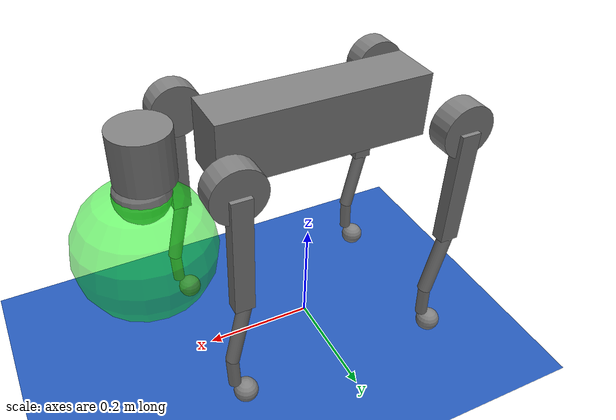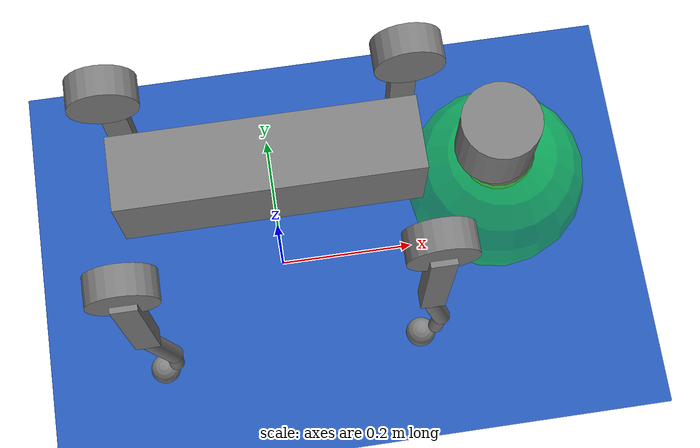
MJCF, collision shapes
<mujoco model="Quadruped">
  <include file="../common.xml"/>

  <size memory="1M"/>

  <custom>
    <!-- agent -->
    <text name="task_transition" data="Quadruped|Biped|Walk|Scramble|Flip" />
    <numeric name="agent_planner" data="2 " />
    <numeric name="agent_horizon" data="0.35" />
    <numeric name="agent_timestep" data="0.01" />
    <numeric name="sampling_spline_points" data="3" />
    <numeric name="sampling_trajectories" data="60"/>
    <numeric name="sampling_exploration" data="0.04" />
    <numeric name="gradient_spline_points" data="5" />

    <!-- residual -->
    <numeric name="residual_select_Gait" data="0"/>
    <text name="residual_list_Gait" data="Stand|Walk|Trot|Canter|Gallop"/>
    <numeric name="residual_select_Gait switch" data="1"/>
    <text name="residual_list_Gait switch" data="Manual|Automatic"/>
    <numeric name="residual_Cadence" data="2 0 4" />
    <numeric name="residual_Amplitude" data=".06 0 0.2" />
    <numeric name="residual_Duty ratio" data="0 0 1"/>
    <numeric name="residual_Walk speed" data="0 0 4"/>
    <numeric name="residual_Walk turn" data="0 -2 2"/>
    <numeric name="residual_select_Flip dir" data="0"/>
    <text name="residual_list_Flip dir" data="Back Flip|Front Flip"/>
    <numeric name="residual_select_Biped type" data="0"/>
    <text name="residual_list_Biped type" data="Foot Stand|Hand Stand"/>
    <numeric name="residual_Heading" data="0 -3.14 3.14" />
    <numeric name="residual_Arm posture" data=".03 0 1"/>

    <!-- estimator -->
    <numeric name="estimator" data="0" />
    <numeric name="estimator_sensor_start" data="9" />
    <numeric name="estimator_number_sensor" data="21" />
    <numeric name="estimator_timestep" data="0.005" />
    <numeric name="batch_configuration_length" data="3" />
    <numeric name="batch_scale_prior" data="1.0e-3" />
  </custom>

  <visual>
    <headlight diffuse="0.6 0.6 0.6"  ambient="0.3 0.3 0.3" specular="0 0 0"/>
    <global azimuth="-90"/>
  </visual>

  <statistic extent="1" center="0 0 .3"/>

  <worldbody>
    <light pos="0 0 1.5" dir="0 0 -1" diffuse="0.5 0.5 0.5" specular="0.3 0.3 0.3"
      directional="true" castshadow="false"/>
    <geom name="floor" size="0 0 0.1" pos="0 0 -0.01" type="plane" material="blue_grid"/>
     <body name="goal" mocap="true" pos=".3 0 0.28">
        <geom size="0.12" contype="0" conaffinity="0" rgba="0 1 0 .5" group="2"/>
      </body>

  </worldbody>

  <default>
    <default class="torque">
      <general gainprm="40" ctrllimited="true" ctrlrange="-1 1"/>
    </default>
    <default class="task">
      <site rgba="1 0 0 1" size=".02" group="5"/>
      <default class="flight">
        <site rgba="1 .3 .3 1" size="0.019" group="5"/>
      </default>
      <default class="stance">
        <site rgba=".3 1 .3 1" size=".018" group="4"/>
      </default>
    </default>
    <default class="prop">
      <geom type="box" rgba="0 0.4 1 1"/>
    </default>
  </default>

  <!-- modified from: https://github.com/google-deepmind/mujoco_menagerie/tree/main/unitree_a1 -->
  <include file="go2.xml" />

  <actuator>
    <position class="abduction" name="FR_hip" joint="FR_hip_joint"/>
    <position class="front_hip" name="FR_thigh" joint="FR_thigh_joint"/>
    <position class="knee" name="FR_calf" joint="FR_calf_joint"/>
    <position class="abduction" name="FL_hip" joint="FL_hip_joint"/>
    <position class="front_hip" name="FL_thigh" joint="FL_thigh_joint"/>
    <position class="knee" name="FL_calf" joint="FL_calf_joint"/>
    <position class="abduction" name="RR_hip" joint="RR_hip_joint"/>
    <position class="back_hip" name="RR_thigh" joint="RR_thigh_joint"/>
    <position class="knee" name="RR_calf" joint="RR_calf_joint"/>
    <position class="abduction" name="RL_hip" joint="RL_hip_joint"/>
    <position class="back_hip" name="RL_thigh" joint="RL_thigh_joint"/>
    <position class="knee" name="RL_calf" joint="RL_calf_joint"/>
  </actuator>

  <sensor>
    <!-- cost -->
    <user name="Upright" dim="3" user="6 0.1 0 3 0.05" />
    <user name="Height" dim="1" user="6 1 0 3 0.04" />
    <user name="Position" dim="3" user="2 0.2 0 0.5 0.1" />
    <user name="Gait" dim="4" user="6 2 0 10 0.03" />
    <user name="Balance" dim="2" user="2 0.2 0 0.3 0.1" />
    <user name="Effort" dim="12" user="0 0.08 0.0 0.1" />
    <user name="Posture" dim="12" user="0 0.02 0.0 0.1" />
    <user name="Orientation" dim="2" user="0 0 0 .03" />
    <user name="Angmom" dim="3" user="0 0 0 .03" />

    <!-- estimator measurements -->

    <jointpos name="pos_FR_hip_joint" joint="FR_hip_joint" />
    <jointpos name="pos_FR_thigh_joint" joint="FR_thigh_joint" />
    <jointpos name="pos_FR_calf_joint" joint="FR_calf_joint" />
    <jointpos name="pos_FL_hip_joint" joint="FL_hip_joint" />
    <jointpos name="pos_FL_thigh_joint" joint="FL_thigh_joint" />
    <jointpos name="pos_FL_calf_joint" joint="FL_calf_joint" />
    <jointpos name="pos_RR_hip_joint" joint="RR_hip_joint" />
    <jointpos name="pos_RR_thigh_joint" joint="RR_thigh_joint" />
    <jointpos name="pos_RR_calf_joint" joint="RR_calf_joint" />
    <jointpos name="pos_RL_hip_joint" joint="RL_hip_joint" />
    <jointpos name="pos_RL_thigh_joint" joint="RL_thigh_joint" />
    <jointpos name="pos_RL_calf_joint" joint="RL_calf_joint" />

    <!-- trace -->
    <framepos      name="trace0" objtype="site" objname="head"/>

    <!-- residual -->
    <subtreecom    name="torso_subtreecom" body="trunk"/>
    <subtreelinvel name="torso_subtreelinvel" body="trunk"/>
    <subtreelinvel name="torso_angmom" body="trunk"/>
  </sensor>

  <keyframe>
    <key name="home" qpos="0 0 0.27 1 0 0 0 0 0.9 -1.8 0 0.9 -1.8 0 0.9 -1.8 0 0.9 -1.8"
      ctrl="0 0.9 -1.8 0 0.9 -1.8 0 0.9 -1.8 0 0.9 -1.8"/>
  </keyframe>
</mujoco>

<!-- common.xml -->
<mujoco>

    <visual>
        <headlight ambient=".4 .4 .4" diffuse=".8 .8 .8" specular="0.1 0.1 0.1"/>
        <map znear=".01"/>
        <quality shadowsize="2048"/>
        <global elevation="-15"/>
    </visual>

    <asset>
        <texture name="blue_grid" type="2d" builtin="checker" rgb1=".02 .14 .44" rgb2=".27 .55 1" width="300" height="300" mark="edge" markrgb="1 1 1"/>
        <material name="blue_grid" texture="blue_grid" texrepeat="1 1" texuniform="true" reflectance=".2"/>

        <texture name="grey_grid" type="2d" builtin="checker" rgb1=".26 .26 .26" rgb2=".6 .6 .6" width="300" height="300" mark="edge" markrgb="1 1 1"/>
        <material name="grey_grid" texture="grey_grid" texrepeat="1 1" texuniform="true" reflectance=".2"/>
        <texture name="skybox" type="skybox" builtin="gradient" rgb1=".66 .79 1" rgb2=".9 .91 .93" width="800" height="800"/>

        <material name="self" rgba=".7 .5 .3 1"/>
        <material name="self_default" rgba=".7 .5 .3 1"/>
        <material name="self_highlight" rgba="0 .5 .3 1"/>
        <material name="effector" rgba=".7 .4 .2 1"/>
        <material name="effector_default" rgba=".7 .4 .2 1"/>
        <material name="effector_highlight" rgba="0 .5 .3 1"/>
        <material name="decoration" rgba=".2 .6 .3 1"/>
        <material name="eye" rgba="0 .2 1 1"/>
        <material name="target" rgba=".6 .3 .3 1"/>
        <material name="target_default" rgba=".6 .3 .3 1"/>
        <material name="target_highlight" rgba=".6 .3 .3 .4"/>
        <material name="site" rgba=".5 .5 .5 .3"/>
    </asset>

    <size memory="1M"/>

    <statistic extent="0.4" center="0.3 0.1 0"/>

    <visual>
        <quality shadowsize="8192"/>
        <global azimuth="180" elevation="-30"/>
    </visual>

    <default>
        <geom friction="1.0"/>
    </default>

    <compiler angle="radian" autolimits="true"/>

    <asset>
        <mesh name="apple" file="../../shared_assets/apple/apple.obj" />
        <mesh name="apple_contact0" file="../../shared_assets/apple/contact0.stl"  />
        <mesh name="apple_contact1" file="../../shared_assets/apple/contact1.stl"  />

        <mesh name="doorknob" file="../../shared_assets/doorknob/doorknob.obj" />

        <mesh name="flashlight" file="../../shared_assets/flashlight/flashlight.obj" />
        <mesh name="flashlight_contact0" file="../../shared_assets/flashlight/contact0.stl"  />
        <mesh name="flashlight_contact1" file="../../shared_assets/flashlight/contact1.stl"  />

        <mesh name="hammer" file="../../shared_assets/hammer/hammer.obj" />
        <mesh name="hammer_contact0" file="../../shared_assets/hammer/contact0.stl"  />
        <mesh name="hammer_contact1" file="../../shared_assets/hammer/contact1.stl"  />

        <mesh name="phone" file="../../shared_assets/phone/phone.obj" />
        <mesh name="phone_contact0" file="../../shared_assets/phone/contact0.stl"  />
        <mesh name="phone_contact1" file="../../shared_assets/phone/contact1.stl"  />
        <mesh name="phone_contact2" file="../../shared_assets/phone/contact2.stl"  />

        <mesh name="stapler" file="../../shared_assets/stapler/stapler.obj" />
        <mesh name="stapler_contact0" file="../../shared_assets/stapler/contact0.stl"  />
        <mesh name="stapler_contact1" file="../../shared_assets/stapler/contact1.stl"  />
        <mesh name="stapler_contact2" file="../../shared_assets/stapler/contact2.stl"  />
        <mesh name="stapler_contact3" file="../../shared_assets/stapler/contact3.stl"  />
        <mesh name="stapler_contact4" file="../../shared_assets/stapler/contact4.stl"  />

        <mesh name="waterbottle" file="../../shared_assets/waterbottle/waterbottle.obj" />
        <mesh name="waterbottle_contact0" file="../../shared_assets/waterbottle/contact0.stl"  />
        <mesh name="waterbottle_contact1" file="../../shared_assets/waterbottle/contact1.stl"  />
    </asset>

</mujoco>

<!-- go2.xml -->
<mujoco model="go2">
  <compiler angle="radian" meshdir="assets" autolimits="true"/>

  <option cone="elliptic" impratio="100"/>

  <default>
    <default class="go2">
      <geom friction="0.6" margin="0.001" condim="1"/>
      <joint axis="0 1 0" damping="2" armature="0.01" frictionloss="0.2"/>
      <position kp="100" forcerange="-23.7 23.7"/>

      <default class="abduction">
        <joint axis="1 0 0" range="-1.0472 1.0472"/>
        <position ctrlrange="-1.0472 1.0472"/>
      </default>
      <default class="hip">
        <default class="front_hip">
          <joint range="-1.5708 3.4907"/>
          <position ctrlrange="-1.5708 3.4907"/>
        </default>
        <default class="back_hip">
          <joint range="-0.5236 4.5379"/>
          <position ctrlrange="-0.5236 4.5379"/>
        </default>
      </default>
      <default class="knee">
        <joint range="-2.7227 -0.83776"/>
        <position ctrlrange="-2.7227 -0.83776"/>
      </default>
      <default class="visual">
        <geom type="mesh" contype="0" conaffinity="0" group="2"/>
      </default>
      <default class="collision">
        <geom group="3"/>
        <default class="foot">
          <geom size="0.022" pos="-0.002 0 -0.213" priority="1" solimp="0.015 1 0.022" condim="6"
            friction="0.8 0.02 0.01"/>
        </default>
      </default>
    </default>
  </default>

  <asset>
    <material name="metal" rgba=".9 .95 .95 1"/>
    <material name="black" rgba="0 0 0 1"/>
    <material name="white" rgba="1 1 1 1"/>
    <material name="gray" rgba="0.671705 0.692426 0.774270 1"/>

    <mesh file="base_0.obj"/>
    <mesh file="base_1.obj"/>
    <mesh file="base_2.obj"/>
    <mesh file="base_3.obj"/>
    <mesh file="base_4.obj"/>
    <mesh file="hip_0.obj"/>
    <mesh file="hip_1.obj"/>
    <mesh file="thigh_0.obj"/>
    <mesh file="thigh_1.obj"/>
    <mesh file="thigh_mirror_0.obj"/>
    <mesh file="thigh_mirror_1.obj"/>
    <mesh file="calf_0.obj"/>
    <mesh file="calf_1.obj"/>
    <mesh file="calf_mirror_0.obj"/>
    <mesh file="calf_mirror_1.obj"/>
    <mesh file="foot.obj"/>
  </asset>

  <worldbody>
    <body name="trunk" pos="0 0 0.445" childclass="go2">
      <site name="head" pos="0.3 0 0" rgba="1 0 0 1" size="0.02" group="5"/>
      <inertial pos="0.021112 0 -0.005366" quat="-0.000543471 0.713435 -0.00173769 0.700719" mass="6.921"
        diaginertia="0.107027 0.0980771 0.0244531"/>
      <freejoint/>
      <geom mesh="base_0" material="black" class="visual"/>
      <geom mesh="base_1" material="black" class="visual"/>
      <geom mesh="base_2" material="black" class="visual"/>
      <geom mesh="base_3" material="white" class="visual"/>
      <geom mesh="base_4" material="gray" class="visual"/>
      <geom size="0.1881 0.04675 0.057" type="box" class="collision"/>
      <geom size="0.05 0.045" pos="0.285 0 0.01" type="cylinder" class="collision"/>
      <geom size="0.047" pos="0.293 0 -0.06" class="collision"/>
      <site name="imu" pos="-0.02557 0 0.04232"/>
      <body name="FR_hip" pos="0.1934 -0.0465 0">
        <inertial pos="-0.0054 -0.00194 -0.000105" quat="0.498237 0.505462 0.499245 0.497014" mass="0.678"
          diaginertia="0.00088403 0.000596003 0.000479967"/>
        <joint name="FR_hip_joint" class="abduction"/>
        <geom mesh="hip_0" material="metal" class="visual" quat="4.63268e-05 1 0 0"/>
        <geom mesh="hip_1" material="gray" class="visual" quat="4.63268e-05 1 0 0"/>
        <geom size="0.046 0.02" pos="0 -0.08 0" quat="0.707107 0.707107 0 0" type="cylinder" class="collision"/>
        <body name="FR_thigh" pos="0 -0.0955 0">
          <inertial pos="-0.00374 0.0223 -0.0327" quat="0.551623 -0.0200632 0.0847635 0.829533" mass="1.152"
            diaginertia="0.00594973 0.00584149 0.000878787"/>
          <joint name="FR_thigh_joint" class="front_hip"/>
          <geom mesh="thigh_mirror_0" material="metal" class="visual"/>
          <geom mesh="thigh_mirror_1" material="gray" class="visual"/>
          <geom size="0.1065 0.01225 0.017" pos="0 0 -0.1065" quat="0.707107 0 0.707107 0" type="box" class="collision"/>
          <body name="FR_calf" pos="0 0 -0.213">
            <inertial pos="0.00629595 0.000622121 -0.141417" quat="0.703508 -0.00450087 0.00154099 0.710672"
              mass="0.241352" diaginertia="0.0014901 0.00146356 5.31397e-05"/>
            <joint name="FR_calf_joint" class="knee"/>
            <geom mesh="calf_mirror_0" material="gray" class="visual"/>
            <geom mesh="calf_mirror_1" material="black" class="visual"/>
            <geom size="0.013 0.06" pos="0.01 0 -0.06" quat="0.995004 0 -0.0998334 0" type="cylinder" class="collision"/>
            <geom size="0.011 0.0325" pos="0.02 0 -0.148" quat="0.999688 0 0.0249974 0" type="cylinder" class="collision"/>
            <geom pos="0 0 -0.213" mesh="foot" class="visual" material="black"/>
            <geom name="FR" class="foot"/>
          </body>
        </body>
      </body>
      <body name="FL_hip" pos="0.1934 0.0465 0">
        <inertial pos="-0.0054 0.00194 -0.000105" quat="0.497014 0.499245 0.505462 0.498237" mass="0.678"
          diaginertia="0.00088403 0.000596003 0.000479967"/>
        <joint name="FL_hip_joint" class="abduction"/>
        <geom mesh="hip_0" material="metal" class="visual"/>
        <geom mesh="hip_1" material="gray" class="visual"/>
        <geom size="0.046 0.02" pos="0 0.08 0" quat="1 1 0 0" type="cylinder" class="collision"/>
        <body name="FL_thigh" pos="0 0.0955 0">
          <inertial pos="-0.00374 -0.0223 -0.0327" quat="0.829533 0.0847635 -0.0200632 0.551623" mass="1.152"
            diaginertia="0.00594973 0.00584149 0.000878787"/>
          <joint name="FL_thigh_joint" class="front_hip"/>
          <geom mesh="thigh_0" material="metal" class="visual"/>
          <geom mesh="thigh_1" material="gray" class="visual"/>
          <geom size="0.1065 0.01225 0.017" pos="0 0 -0.1065" quat="0.707107 0 0.707107 0" type="box" class="collision"/>
          <body name="FL_calf" pos="0 0 -0.213">
            <inertial pos="0.00629595 -0.000622121 -0.141417" quat="0.710672 0.00154099 -0.00450087 0.703508"
              mass="0.241352" diaginertia="0.0014901 0.00146356 5.31397e-05"/>
            <joint name="FL_calf_joint" class="knee"/>
            <geom mesh="calf_0" material="gray" class="visual"/>
            <geom mesh="calf_1" material="black" class="visual"/>
            <geom size="0.012 0.06" pos="0.008 0 -0.06" quat="0.994493 0 -0.104807 0" type="cylinder" class="collision"/>
            <geom size="0.011 0.0325" pos="0.02 0 -0.148" quat="0.999688 0 0.0249974 0" type="cylinder" class="collision"/>
            <geom pos="0 0 -0.213" mesh="foot" class="visual" material="black"/>
            <geom name="FL" class="foot"/>
          </body>
        </body>
      </body>
      <body name="RR_hip" pos="-0.1934 -0.0465 0">
        <inertial pos="0.0054 -0.00194 -0.000105" quat="0.499245 0.497014 0.498237 0.505462" mass="0.678"
          diaginertia="0.00088403 0.000596003 0.000479967"/>
        <joint name="RR_hip_joint" class="abduction"/>
        <geom mesh="hip_0" material="metal" class="visual" quat="2.14617e-09 4.63268e-05 4.63268e-05 -1"/>
        <geom mesh="hip_1" material="gray" class="visual" quat="2.14617e-09 4.63268e-05 4.63268e-05 -1"/>
        <geom size="0.046 0.02" pos="0 -0.08 0" quat="0.707107 0.707107 0 0" type="cylinder" class="collision"/>
        <body name="RR_thigh" pos="0 -0.0955 0">
          <inertial pos="-0.00374 0.0223 -0.0327" quat="0.551623 -0.0200632 0.0847635 0.829533" mass="1.152"
            diaginertia="0.00594973 0.00584149 0.000878787"/>
          <joint name="RR_thigh_joint" class="back_hip"/>
          <geom mesh="thigh_mirror_0" material="metal" class="visual"/>
          <geom mesh="thigh_mirror_1" material="gray" class="visual"/>
          <geom size="0.1065 0.01225 0.017" pos="0 0 -0.1065" quat="0.707107 0 0.707107 0" type="box" class="collision"/>
          <body name="RR_calf" pos="0 0 -0.213">
            <inertial pos="0.00629595 0.000622121 -0.141417" quat="0.703508 -0.00450087 0.00154099 0.710672"
              mass="0.241352" diaginertia="0.0014901 0.00146356 5.31397e-05"/>
            <joint name="RR_calf_joint" class="knee"/>
            <geom mesh="calf_mirror_0" material="gray" class="visual"/>
            <geom mesh="calf_mirror_1" material="black" class="visual"/>
            <geom size="0.013 0.06" pos="0.01 0 -0.06" quat="0.995004 0 -0.0998334 0" type="cylinder" class="collision"/>
            <geom size="0.011 0.0325" pos="0.02 0 -0.148" quat="0.999688 0 0.0249974 0" type="cylinder" class="collision"/>
            <geom pos="0 0 -0.213" mesh="foot" class="visual" material="black"/>
            <geom name="RR" class="foot"/>
          </body>
        </body>
      </body>
      <body name="RL_hip" pos="-0.1934 0.0465 0">
        <inertial pos="0.0054 0.00194 -0.000105" quat="0.505462 0.498237 0.497014 0.499245" mass="0.678"
          diaginertia="0.00088403 0.000596003 0.000479967"/>
        <joint name="RL_hip_joint" class="abduction"/>
        <geom mesh="hip_0" material="metal" class="visual" quat="4.63268e-05 0 1 0"/>
        <geom mesh="hip_1" material="gray" class="visual" quat="4.63268e-05 0 1 0"/>
        <geom size="0.046 0.02" pos="0 0.08 0" quat="0.707107 0.707107 0 0" type="cylinder" class="collision"/>
        <body name="RL_thigh" pos="0 0.0955 0">
          <inertial pos="-0.00374 -0.0223 -0.0327" quat="0.829533 0.0847635 -0.0200632 0.551623" mass="1.152"
            diaginertia="0.00594973 0.00584149 0.000878787"/>
          <joint name="RL_thigh_joint" class="back_hip"/>
          <geom mesh="thigh_0" material="metal" class="visual"/>
          <geom mesh="thigh_1" material="gray" class="visual"/>
          <geom size="0.1065 0.01225 0.017" pos="0 0 -0.1065" quat="0.707107 0 0.707107 0" type="box" class="collision"/>
          <body name="RL_calf" pos="0 0 -0.213">
            <inertial pos="0.00629595 -0.000622121 -0.141417" quat="0.710672 0.00154099 -0.00450087 0.703508"
              mass="0.241352" diaginertia="0.0014901 0.00146356 5.31397e-05"/>
            <joint name="RL_calf_joint" class="knee"/>
            <geom mesh="calf_0" material="gray" class="visual"/>
            <geom mesh="calf_1" material="black" class="visual"/>
            <geom size="0.013 0.06" pos="0.01 0 -0.06" quat="0.995004 0 -0.0998334 0" type="cylinder" class="collision"/>
            <geom size="0.011 0.0325" pos="0.02 0 -0.148" quat="0.999688 0 0.0249974 0" type="cylinder" class="collision"/>
            <geom pos="0 0 -0.213" mesh="foot" class="visual" material="black"/>
            <geom name="RL" class="foot"/>
          </body>
        </body>
      </body>

    </body>
  </worldbody>

</mujoco>
